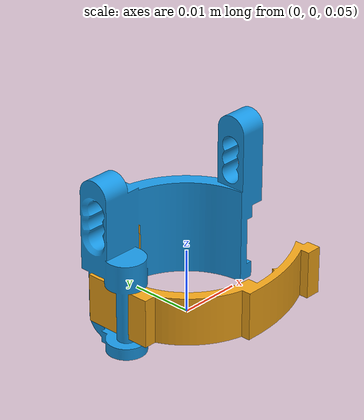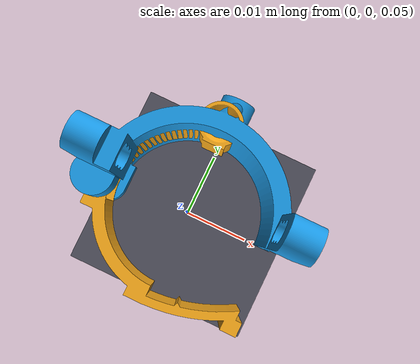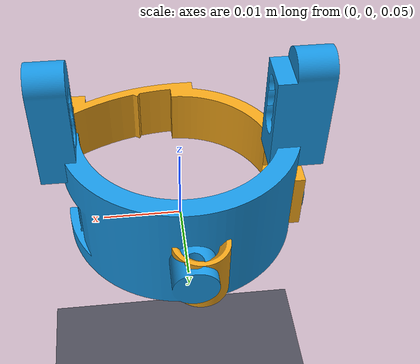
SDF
<?xml version="1.0" ?>
<sdf version="1.6">
  <world name="phalanx1_clasp_world">
    <!-- Ánh sáng mặt trời trực tiếp (Inline - Không cần tải từ internet) -->
    <light type="directional" name="sun">
      <cast_shadows>true</cast_shadows>
      <pose>0 0 10 0 0 0</pose>
      <diffuse>0.9 0.9 0.9 1</diffuse>
      <specular>0.2 0.2 0.2 1</specular>
      <attenuation>
        <range>1000</range>
        <constant>0.9</constant>
        <linear>0.01</linear>
        <quadratic>0.001</quadratic>
      </attenuation>
      <direction>-0.5 0.2 -1.0</direction>
    </light>

    <!-- Mặt phẳng sàn (Inline - Không cần tải từ internet) -->
    <model name="ground_plane">
      <static>true</static>
      <link name="link">
        <collision name="collision">
          <geometry>
            <plane>
              <normal>0 0 1</normal>
              <size>2 2</size>
            </plane>
          </geometry>
        </collision>
        <visual name="visual">
          <cast_shadows>false</cast_shadows>
          <geometry>
            <plane>
              <normal>0 0 1</normal>
              <size>2 2</size>
            </plane>
          </geometry>
          <material>
            <ambient>0.3 0.3 0.35 1</ambient>
            <diffuse>0.3 0.3 0.35 1</diffuse>
          </material>
        </visual>
      </link>
    </model>

    <!-- Mô hình Đốt 1 Khóa Gối Đồng Tâm -->
    <model name="phalanx1_concentric_clasp">
      <pose>0 0 0.05 0 0 0</pose>

      <!-- Máng mu ngón (Dorsal Shell) - Cố định làm đế -->
      <link name="dorsal_link">
        <pose>0 0 0 0 0 0</pose>
        <inertial>
          <pose>0 0.0045 0.0075 0 0 0</pose>
          <mass>0.015</mass>
          <inertia>
            <ixx>1.2e-6</ixx><ixy>0</ixy><ixz>0</ixz>
            <iyy>1.5e-6</iyy><iyz>0</iyz>
            <izz>1.8e-6</izz>
          </inertia>
        </inertial>
        <visual name="dorsal_vis">
          <geometry>
            <mesh>
              <uri>file:///home/nhatv/exo_phalanx1_sim/phalanx1_dorsal_only.stl</uri>
              <scale>0.001 0.001 0.001</scale>
            </mesh>
          </geometry>
          <material>
            <ambient>0.1 0.6 0.9 1</ambient>
            <diffuse>0.1 0.6 0.9 1</diffuse>
            <specular>0.3 0.3 0.3 1</specular>
          </material>
        </visual>
        <collision name="dorsal_col">
          <geometry>
            <mesh>
              <uri>file:///home/nhatv/exo_phalanx1_sim/phalanx1_dorsal_only.stl</uri>
              <scale>0.001 0.001 0.001</scale>
            </mesh>
          </geometry>
        </collision>
      </link>

      <!-- Quai bụng ngón (Palmar Clam-shell Arm) -->
      <link name="palmar_link">
        <!-- Đặt tư thế ban đầu ở góc mở -90 độ quanh bản lề -->
        <pose>0 0 0 0 0 -1.570796</pose>
        <inertial>
          <pose>0 -0.0085 0.0062 0 0 0</pose>
          <mass>0.008</mass>
          <inertia>
            <ixx>0.6e-6</ixx><ixy>0</ixy><ixz>0</ixz>
            <iyy>0.8e-6</iyy><iyz>0</iyz>
            <izz>0.9e-6</izz>
          </inertia>
        </inertial>
        <visual name="palmar_vis">
          <geometry>
            <mesh>
              <uri>file:///home/nhatv/exo_phalanx1_sim/phalanx1_palmar_arm_only.stl</uri>
              <scale>0.001 0.001 0.001</scale>
            </mesh>
          </geometry>
          <material>
            <ambient>0.95 0.65 0.1 1</ambient>
            <diffuse>0.95 0.65 0.1 1</diffuse>
            <specular>0.3 0.3 0.3 1</specular>
          </material>
        </visual>
        <collision name="palmar_col">
          <geometry>
            <mesh>
              <uri>file:///home/nhatv/exo_phalanx1_sim/phalanx1_palmar_arm_only.stl</uri>
              <scale>0.001 0.001 0.001</scale>
            </mesh>
          </geometry>
        </collision>
      </link>

      <!-- Khớp xoay bản lề H(-13.6mm, -1.0mm) -->
      <joint name="hinge_joint" type="revolute">
        <parent>dorsal_link</parent>
        <child>palmar_link</child>
        <pose>-0.0136 -0.0010 0.0 0 0 0</pose>
        <axis>
          <xyz>0 0 1</xyz>
          <limit>
            <lower>-1.570796</lower>
            <upper>0.0</upper>
            <effort>1.0</effort>
            <velocity>5.0</velocity>
          </limit>
          <dynamics>
            <damping>0.005</damping>
            <friction>0.01</friction>
          </dynamics>
        </axis>
      </joint>
    </model>
  </world>
</sdf>
